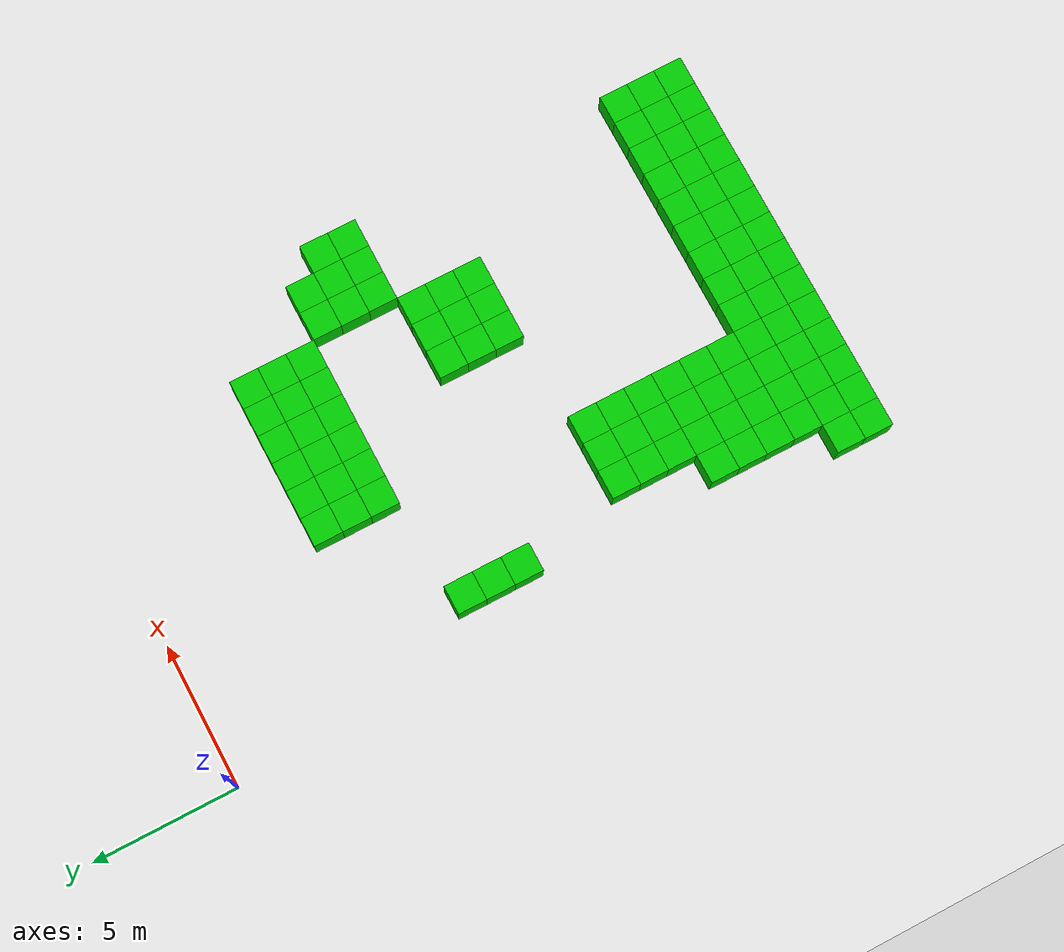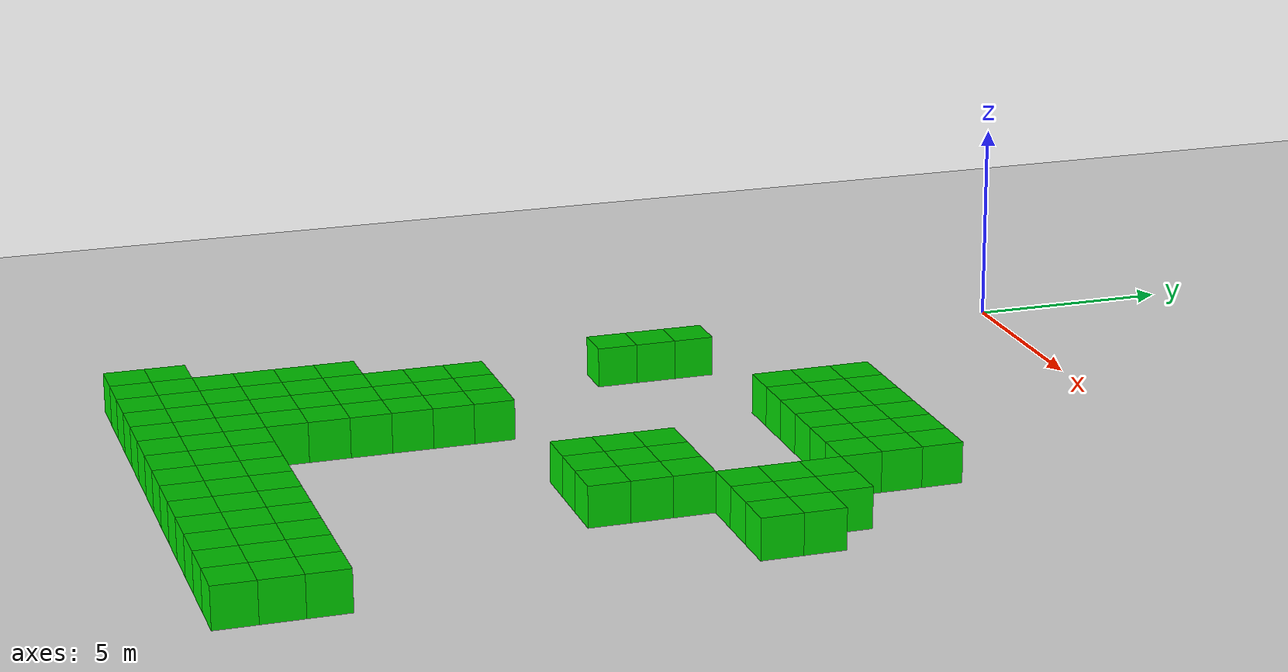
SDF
<sdf version="1.6">
 <world name="generated_maze">
  <model name="ground_plane">
   <static>true</static>
   <link name="link">
    <collision name="collision">
     <geometry><plane><normal>0 0 1</normal><size>100 100</size></plane></geometry>
    </collision>
    <visual name="visual">
     <geometry><plane><normal>0 0 1</normal><size>100 100</size></plane></geometry>
     <material>
      <ambient>0.9 0.9 0.9 1</ambient>
      <diffuse>0.9 0.9 0.9 1</diffuse>
      <specular>0.3 0.3 0.3 1</specular>
     </material>
    </visual>
   </link>
  </model>
  <model name="wall_30_30">
   <static>true</static>
   <pose>6 -6 0.5 0 0 0</pose>
   <link name="link">
    <collision name="collision"><geometry><box><size>1 1 1</size></box></geometry></collision>
    <visual name="visual">
     <geometry><box><size>1 1 1</size></box></geometry>
     <material>
      <ambient>0.0 0.8 0.0 1</ambient>
      <diffuse>0.0 0.8 0.0 1</diffuse>
      <specular>0.1 0.1 0.1 1</specular>
     </material>
    </visual>
   </link>
  </model>
  <model name="wall_30_31">
   <static>true</static>
   <pose>7 -6 0.5 0 0 0</pose>
   <link name="link">
    <collision name="collision"><geometry><box><size>1 1 1</size></box></geometry></collision>
    <visual name="visual">
     <geometry><box><size>1 1 1</size></box></geometry>
     <material>
      <ambient>0.0 0.8 0.0 1</ambient>
      <diffuse>0.0 0.8 0.0 1</diffuse>
      <specular>0.1 0.1 0.1 1</specular>
     </material>
    </visual>
   </link>
  </model>
  <model name="wall_30_32">
   <static>true</static>
   <pose>8 -6 0.5 0 0 0</pose>
   <link name="link">
    <collision name="collision"><geometry><box><size>1 1 1</size></box></geometry></collision>
    <visual name="visual">
     <geometry><box><size>1 1 1</size></box></geometry>
     <material>
      <ambient>0.0 0.8 0.0 1</ambient>
      <diffuse>0.0 0.8 0.0 1</diffuse>
      <specular>0.1 0.1 0.1 1</specular>
     </material>
    </visual>
   </link>
  </model>
  <model name="wall_30_33">
   <static>true</static>
   <pose>9 -6 0.5 0 0 0</pose>
   <link name="link">
    <collision name="collision"><geometry><box><size>1 1 1</size></box></geometry></collision>
    <visual name="visual">
     <geometry><box><size>1 1 1</size></box></geometry>
     <material>
      <ambient>0.0 0.8 0.0 1</ambient>
      <diffuse>0.0 0.8 0.0 1</diffuse>
      <specular>0.1 0.1 0.1 1</specular>
     </material>
    </visual>
   </link>
  </model>
  <model name="wall_30_34">
   <static>true</static>
   <pose>10 -6 0.5 0 0 0</pose>
   <link name="link">
    <collision name="collision"><geometry><box><size>1 1 1</size></box></geometry></collision>
    <visual name="visual">
     <geometry><box><size>1 1 1</size></box></geometry>
     <material>
      <ambient>0.0 0.8 0.0 1</ambient>
      <diffuse>0.0 0.8 0.0 1</diffuse>
      <specular>0.1 0.1 0.1 1</specular>
     </material>
    </visual>
   </link>
  </model>
  <model name="wall_30_35">
   <static>true</static>
   <pose>11 -6 0.5 0 0 0</pose>
   <link name="link">
    <collision name="collision"><geometry><box><size>1 1 1</size></box></geometry></collision>
    <visual name="visual">
     <geometry><box><size>1 1 1</size></box></geometry>
     <material>
      <ambient>0.0 0.8 0.0 1</ambient>
      <diffuse>0.0 0.8 0.0 1</diffuse>
      <specular>0.1 0.1 0.1 1</specular>
     </material>
    </visual>
   </link>
  </model>
  <model name="wall_31_30">
   <static>true</static>
   <pose>6 -7 0.5 0 0 0</pose>
   <link name="link">
    <collision name="collision"><geometry><box><size>1 1 1</size></box></geometry></collision>
    <visual name="visual">
     <geometry><box><size>1 1 1</size></box></geometry>
     <material>
      <ambient>0.0 0.8 0.0 1</ambient>
      <diffuse>0.0 0.8 0.0 1</diffuse>
      <specular>0.1 0.1 0.1 1</specular>
     </material>
    </visual>
   </link>
  </model>
  <model name="wall_31_31">
   <static>true</static>
   <pose>7 -7 0.5 0 0 0</pose>
   <link name="link">
    <collision name="collision"><geometry><box><size>1 1 1</size></box></geometry></collision>
    <visual name="visual">
     <geometry><box><size>1 1 1</size></box></geometry>
     <material>
      <ambient>0.0 0.8 0.0 1</ambient>
      <diffuse>0.0 0.8 0.0 1</diffuse>
      <specular>0.1 0.1 0.1 1</specular>
     </material>
    </visual>
   </link>
  </model>
  <model name="wall_31_32">
   <static>true</static>
   <pose>8 -7 0.5 0 0 0</pose>
   <link name="link">
    <collision name="collision"><geometry><box><size>1 1 1</size></box></geometry></collision>
    <visual name="visual">
     <geometry><box><size>1 1 1</size></box></geometry>
     <material>
      <ambient>0.0 0.8 0.0 1</ambient>
      <diffuse>0.0 0.8 0.0 1</diffuse>
      <specular>0.1 0.1 0.1 1</specular>
     </material>
    </visual>
   </link>
  </model>
  <model name="wall_31_33">
   <static>true</static>
   <pose>9 -7 0.5 0 0 0</pose>
   <link name="link">
    <collision name="collision"><geometry><box><size>1 1 1</size></box></geometry></collision>
    <visual name="visual">
     <geometry><box><size>1 1 1</size></box></geometry>
     <material>
      <ambient>0.0 0.8 0.0 1</ambient>
      <diffuse>0.0 0.8 0.0 1</diffuse>
      <specular>0.1 0.1 0.1 1</specular>
     </material>
    </visual>
   </link>
  </model>
  <model name="wall_31_34">
   <static>true</static>
   <pose>10 -7 0.5 0 0 0</pose>
   <link name="link">
    <collision name="collision"><geometry><box><size>1 1 1</size></box></geometry></collision>
    <visual name="visual">
     <geometry><box><size>1 1 1</size></box></geometry>
     <material>
      <ambient>0.0 0.8 0.0 1</ambient>
      <diffuse>0.0 0.8 0.0 1</diffuse>
      <specular>0.1 0.1 0.1 1</specular>
     </material>
    </visual>
   </link>
  </model>
  <model name="wall_31_35">
   <static>true</static>
   <pose>11 -7 0.5 0 0 0</pose>
   <link name="link">
    <collision name="collision"><geometry><box><size>1 1 1</size></box></geometry></collision>
    <visual name="visual">
     <geometry><box><size>1 1 1</size></box></geometry>
     <material>
      <ambient>0.0 0.8 0.0 1</ambient>
      <diffuse>0.0 0.8 0.0 1</diffuse>
      <specular>0.1 0.1 0.1 1</specular>
     </material>
    </visual>
   </link>
  </model>
  <model name="wall_32_30">
   <static>true</static>
   <pose>6 -8 0.5 0 0 0</pose>
   <link name="link">
    <collision name="collision"><geometry><box><size>1 1 1</size></box></geometry></collision>
    <visual name="visual">
     <geometry><box><size>1 1 1</size></box></geometry>
     <material>
      <ambient>0.0 0.8 0.0 1</ambient>
      <diffuse>0.0 0.8 0.0 1</diffuse>
      <specular>0.1 0.1 0.1 1</specular>
     </material>
    </visual>
   </link>
  </model>
  <model name="wall_32_31">
   <static>true</static>
   <pose>7 -8 0.5 0 0 0</pose>
   <link name="link">
    <collision name="collision"><geometry><box><size>1 1 1</size></box></geometry></collision>
    <visual name="visual">
     <geometry><box><size>1 1 1</size></box></geometry>
     <material>
      <ambient>0.0 0.8 0.0 1</ambient>
      <diffuse>0.0 0.8 0.0 1</diffuse>
      <specular>0.1 0.1 0.1 1</specular>
     </material>
    </visual>
   </link>
  </model>
  <model name="wall_32_32">
   <static>true</static>
   <pose>8 -8 0.5 0 0 0</pose>
   <link name="link">
    <collision name="collision"><geometry><box><size>1 1 1</size></box></geometry></collision>
    <visual name="visual">
     <geometry><box><size>1 1 1</size></box></geometry>
     <material>
      <ambient>0.0 0.8 0.0 1</ambient>
      <diffuse>0.0 0.8 0.0 1</diffuse>
      <specular>0.1 0.1 0.1 1</specular>
     </material>
    </visual>
   </link>
  </model>
  <model name="wall_32_33">
   <static>true</static>
   <pose>9 -8 0.5 0 0 0</pose>
   <link name="link">
    <collision name="collision"><geometry><box><size>1 1 1</size></box></geometry></collision>
    <visual name="visual">
     <geometry><box><size>1 1 1</size></box></geometry>
     <material>
      <ambient>0.0 0.8 0.0 1</ambient>
      <diffuse>0.0 0.8 0.0 1</diffuse>
      <specular>0.1 0.1 0.1 1</specular>
     </material>
    </visual>
   </link>
  </model>
  <model name="wall_32_34">
   <static>true</static>
   <pose>10 -8 0.5 0 0 0</pose>
   <link name="link">
    <collision name="collision"><geometry><box><size>1 1 1</size></box></geometry></collision>
    <visual name="visual">
     <geometry><box><size>1 1 1</size></box></geometry>
     <material>
      <ambient>0.0 0.8 0.0 1</ambient>
      <diffuse>0.0 0.8 0.0 1</diffuse>
      <specular>0.1 0.1 0.1 1</specular>
     </material>
    </visual>
   </link>
  </model>
  <model name="wall_32_35">
   <static>true</static>
   <pose>11 -8 0.5 0 0 0</pose>
   <link name="link">
    <collision name="collision"><geometry><box><size>1 1 1</size></box></geometry></collision>
    <visual name="visual">
     <geometry><box><size>1 1 1</size></box></geometry>
     <material>
      <ambient>0.0 0.8 0.0 1</ambient>
      <diffuse>0.0 0.8 0.0 1</diffuse>
      <specular>0.1 0.1 0.1 1</specular>
     </material>
    </visual>
   </link>
  </model>
  <model name="wall_33_26">
   <static>true</static>
   <pose>2 -9 0.5 0 0 0</pose>
   <link name="link">
    <collision name="collision"><geometry><box><size>1 1 1</size></box></geometry></collision>
    <visual name="visual">
     <geometry><box><size>1 1 1</size></box></geometry>
     <material>
      <ambient>0.0 0.8 0.0 1</ambient>
      <diffuse>0.0 0.8 0.0 1</diffuse>
      <specular>0.1 0.1 0.1 1</specular>
     </material>
    </visual>
   </link>
  </model>
  <model name="wall_33_36">
   <static>true</static>
   <pose>12 -9 0.5 0 0 0</pose>
   <link name="link">
    <collision name="collision"><geometry><box><size>1 1 1</size></box></geometry></collision>
    <visual name="visual">
     <geometry><box><size>1 1 1</size></box></geometry>
     <material>
      <ambient>0.0 0.8 0.0 1</ambient>
      <diffuse>0.0 0.8 0.0 1</diffuse>
      <specular>0.1 0.1 0.1 1</specular>
     </material>
    </visual>
   </link>
  </model>
  <model name="wall_33_37">
   <static>true</static>
   <pose>13 -9 0.5 0 0 0</pose>
   <link name="link">
    <collision name="collision"><geometry><box><size>1 1 1</size></box></geometry></collision>
    <visual name="visual">
     <geometry><box><size>1 1 1</size></box></geometry>
     <material>
      <ambient>0.0 0.8 0.0 1</ambient>
      <diffuse>0.0 0.8 0.0 1</diffuse>
      <specular>0.1 0.1 0.1 1</specular>
     </material>
    </visual>
   </link>
  </model>
  <model name="wall_34_26">
   <static>true</static>
   <pose>2 -10 0.5 0 0 0</pose>
   <link name="link">
    <collision name="collision"><geometry><box><size>1 1 1</size></box></geometry></collision>
    <visual name="visual">
     <geometry><box><size>1 1 1</size></box></geometry>
     <material>
      <ambient>0.0 0.8 0.0 1</ambient>
      <diffuse>0.0 0.8 0.0 1</diffuse>
      <specular>0.1 0.1 0.1 1</specular>
     </material>
    </visual>
   </link>
  </model>
  <model name="wall_34_36">
   <static>true</static>
   <pose>12 -10 0.5 0 0 0</pose>
   <link name="link">
    <collision name="collision"><geometry><box><size>1 1 1</size></box></geometry></collision>
    <visual name="visual">
     <geometry><box><size>1 1 1</size></box></geometry>
     <material>
      <ambient>0.0 0.8 0.0 1</ambient>
      <diffuse>0.0 0.8 0.0 1</diffuse>
      <specular>0.1 0.1 0.1 1</specular>
     </material>
    </visual>
   </link>
  </model>
  <model name="wall_34_37">
   <static>true</static>
   <pose>13 -10 0.5 0 0 0</pose>
   <link name="link">
    <collision name="collision"><geometry><box><size>1 1 1</size></box></geometry></collision>
    <visual name="visual">
     <geometry><box><size>1 1 1</size></box></geometry>
     <material>
      <ambient>0.0 0.8 0.0 1</ambient>
      <diffuse>0.0 0.8 0.0 1</diffuse>
      <specular>0.1 0.1 0.1 1</specular>
     </material>
    </visual>
   </link>
  </model>
  <model name="wall_34_38">
   <static>true</static>
   <pose>14 -10 0.5 0 0 0</pose>
   <link name="link">
    <collision name="collision"><geometry><box><size>1 1 1</size></box></geometry></collision>
    <visual name="visual">
     <geometry><box><size>1 1 1</size></box></geometry>
     <material>
      <ambient>0.0 0.8 0.0 1</ambient>
      <diffuse>0.0 0.8 0.0 1</diffuse>
      <specular>0.1 0.1 0.1 1</specular>
     </material>
    </visual>
   </link>
  </model>
  <model name="wall_35_26">
   <static>true</static>
   <pose>2 -11 0.5 0 0 0</pose>
   <link name="link">
    <collision name="collision"><geometry><box><size>1 1 1</size></box></geometry></collision>
    <visual name="visual">
     <geometry><box><size>1 1 1</size></box></geometry>
     <material>
      <ambient>0.0 0.8 0.0 1</ambient>
      <diffuse>0.0 0.8 0.0 1</diffuse>
      <specular>0.1 0.1 0.1 1</specular>
     </material>
    </visual>
   </link>
  </model>
  <model name="wall_35_36">
   <static>true</static>
   <pose>12 -11 0.5 0 0 0</pose>
   <link name="link">
    <collision name="collision"><geometry><box><size>1 1 1</size></box></geometry></collision>
    <visual name="visual">
     <geometry><box><size>1 1 1</size></box></geometry>
     <material>
      <ambient>0.0 0.8 0.0 1</ambient>
      <diffuse>0.0 0.8 0.0 1</diffuse>
      <specular>0.1 0.1 0.1 1</specular>
     </material>
    </visual>
   </link>
  </model>
  <model name="wall_35_37">
   <static>true</static>
   <pose>13 -11 0.5 0 0 0</pose>
   <link name="link">
    <collision name="collision"><geometry><box><size>1 1 1</size></box></geometry></collision>
    <visual name="visual">
     <geometry><box><size>1 1 1</size></box></geometry>
     <material>
      <ambient>0.0 0.8 0.0 1</ambient>
      <diffuse>0.0 0.8 0.0 1</diffuse>
      <specular>0.1 0.1 0.1 1</specular>
     </material>
    </visual>
   </link>
  </model>
  <model name="wall_35_38">
   <static>true</static>
   <pose>14 -11 0.5 0 0 0</pose>
   <link name="link">
    <collision name="collision"><geometry><box><size>1 1 1</size></box></geometry></collision>
    <visual name="visual">
     <geometry><box><size>1 1 1</size></box></geometry>
     <material>
      <ambient>0.0 0.8 0.0 1</ambient>
      <diffuse>0.0 0.8 0.0 1</diffuse>
      <specular>0.1 0.1 0.1 1</specular>
     </material>
    </visual>
   </link>
  </model>
  <model name="wall_36_33">
   <static>true</static>
   <pose>9 -12 0.5 0 0 0</pose>
   <link name="link">
    <collision name="collision"><geometry><box><size>1 1 1</size></box></geometry></collision>
    <visual name="visual">
     <geometry><box><size>1 1 1</size></box></geometry>
     <material>
      <ambient>0.0 0.8 0.0 1</ambient>
      <diffuse>0.0 0.8 0.0 1</diffuse>
      <specular>0.1 0.1 0.1 1</specular>
     </material>
    </visual>
   </link>
  </model>
  <model name="wall_36_34">
   <static>true</static>
   <pose>10 -12 0.5 0 0 0</pose>
   <link name="link">
    <collision name="collision"><geometry><box><size>1 1 1</size></box></geometry></collision>
    <visual name="visual">
     <geometry><box><size>1 1 1</size></box></geometry>
     <material>
      <ambient>0.0 0.8 0.0 1</ambient>
      <diffuse>0.0 0.8 0.0 1</diffuse>
      <specular>0.1 0.1 0.1 1</specular>
     </material>
    </visual>
   </link>
  </model>
  <model name="wall_36_35">
   <static>true</static>
   <pose>11 -12 0.5 0 0 0</pose>
   <link name="link">
    <collision name="collision"><geometry><box><size>1 1 1</size></box></geometry></collision>
    <visual name="visual">
     <geometry><box><size>1 1 1</size></box></geometry>
     <material>
      <ambient>0.0 0.8 0.0 1</ambient>
      <diffuse>0.0 0.8 0.0 1</diffuse>
      <specular>0.1 0.1 0.1 1</specular>
     </material>
    </visual>
   </link>
  </model>
  <model name="wall_37_33">
   <static>true</static>
   <pose>9 -13 0.5 0 0 0</pose>
   <link name="link">
    <collision name="collision"><geometry><box><size>1 1 1</size></box></geometry></collision>
    <visual name="visual">
     <geometry><box><size>1 1 1</size></box></geometry>
     <material>
      <ambient>0.0 0.8 0.0 1</ambient>
      <diffuse>0.0 0.8 0.0 1</diffuse>
      <specular>0.1 0.1 0.1 1</specular>
     </material>
    </visual>
   </link>
  </model>
  <model name="wall_37_34">
   <static>true</static>
   <pose>10 -13 0.5 0 0 0</pose>
   <link name="link">
    <collision name="collision"><geometry><box><size>1 1 1</size></box></geometry></collision>
    <visual name="visual">
     <geometry><box><size>1 1 1</size></box></geometry>
     <material>
      <ambient>0.0 0.8 0.0 1</ambient>
      <diffuse>0.0 0.8 0.0 1</diffuse>
      <specular>0.1 0.1 0.1 1</specular>
     </material>
    </visual>
   </link>
  </model>
  <model name="wall_37_35">
   <static>true</static>
   <pose>11 -13 0.5 0 0 0</pose>
   <link name="link">
    <collision name="collision"><geometry><box><size>1 1 1</size></box></geometry></collision>
    <visual name="visual">
     <geometry><box><size>1 1 1</size></box></geometry>
     <material>
      <ambient>0.0 0.8 0.0 1</ambient>
      <diffuse>0.0 0.8 0.0 1</diffuse>
      <specular>0.1 0.1 0.1 1</specular>
     </material>
    </visual>
   </link>
  </model>
  <model name="wall_38_33">
   <static>true</static>
   <pose>9 -14 0.5 0 0 0</pose>
   <link name="link">
    <collision name="collision"><geometry><box><size>1 1 1</size></box></geometry></collision>
    <visual name="visual">
     <geometry><box><size>1 1 1</size></box></geometry>
     <material>
      <ambient>0.0 0.8 0.0 1</ambient>
      <diffuse>0.0 0.8 0.0 1</diffuse>
      <specular>0.1 0.1 0.1 1</specular>
     </material>
    </visual>
   </link>
  </model>
  <model name="wall_38_34">
   <static>true</static>
   <pose>10 -14 0.5 0 0 0</pose>
   <link name="link">
    <collision name="collision"><geometry><box><size>1 1 1</size></box></geometry></collision>
    <visual name="visual">
     <geometry><box><size>1 1 1</size></box></geometry>
     <material>
      <ambient>0.0 0.8 0.0 1</ambient>
      <diffuse>0.0 0.8 0.0 1</diffuse>
      <specular>0.1 0.1 0.1 1</specular>
     </material>
    </visual>
   </link>
  </model>
  <model name="wall_38_35">
   <static>true</static>
   <pose>11 -14 0.5 0 0 0</pose>
   <link name="link">
    <collision name="collision"><geometry><box><size>1 1 1</size></box></geometry></collision>
    <visual name="visual">
     <geometry><box><size>1 1 1</size></box></geometry>
     <material>
      <ambient>0.0 0.8 0.0 1</ambient>
      <diffuse>0.0 0.8 0.0 1</diffuse>
      <specular>0.1 0.1 0.1 1</specular>
     </material>
    </visual>
   </link>
  </model>
  <model name="wall_39_27">
   <static>true</static>
   <pose>3 -15 0.5 0 0 0</pose>
   <link name="link">
    <collision name="collision"><geometry><box><size>1 1 1</size></box></geometry></collision>
    <visual name="visual">
     <geometry><box><size>1 1 1</size></box></geometry>
     <material>
      <ambient>0.0 0.8 0.0 1</ambient>
      <diffuse>0.0 0.8 0.0 1</diffuse>
      <specular>0.1 0.1 0.1 1</specular>
     </material>
    </visual>
   </link>
  </model>
  <model name="wall_39_28">
   <static>true</static>
   <pose>4 -15 0.5 0 0 0</pose>
   <link name="link">
    <collision name="collision"><geometry><box><size>1 1 1</size></box></geometry></collision>
    <visual name="visual">
     <geometry><box><size>1 1 1</size></box></geometry>
     <material>
      <ambient>0.0 0.8 0.0 1</ambient>
      <diffuse>0.0 0.8 0.0 1</diffuse>
      <specular>0.1 0.1 0.1 1</specular>
     </material>
    </visual>
   </link>
  </model>
  <model name="wall_39_29">
   <static>true</static>
   <pose>5 -15 0.5 0 0 0</pose>
   <link name="link">
    <collision name="collision"><geometry><box><size>1 1 1</size></box></geometry></collision>
    <visual name="visual">
     <geometry><box><size>1 1 1</size></box></geometry>
     <material>
      <ambient>0.0 0.8 0.0 1</ambient>
      <diffuse>0.0 0.8 0.0 1</diffuse>
      <specular>0.1 0.1 0.1 1</specular>
     </material>
    </visual>
   </link>
  </model>
  <model name="wall_40_27">
   <static>true</static>
   <pose>3 -16 0.5 0 0 0</pose>
   <link name="link">
    <collision name="collision"><geometry><box><size>1 1 1</size></box></geometry></collision>
    <visual name="visual">
     <geometry><box><size>1 1 1</size></box></geometry>
     <material>
      <ambient>0.0 0.8 0.0 1</ambient>
      <diffuse>0.0 0.8 0.0 1</diffuse>
      <specular>0.1 0.1 0.1 1</specular>
     </material>
    </visual>
   </link>
  </model>
  <model name="wall_40_28">
   <static>true</static>
   <pose>4 -16 0.5 0 0 0</pose>
   <link name="link">
    <collision name="collision"><geometry><box><size>1 1 1</size></box></geometry></collision>
    <visual name="visual">
     <geometry><box><size>1 1 1</size></box></geometry>
     <material>
      <ambient>0.0 0.8 0.0 1</ambient>
      <diffuse>0.0 0.8 0.0 1</diffuse>
      <specular>0.1 0.1 0.1 1</specular>
     </material>
    </visual>
   </link>
  </model>
  <model name="wall_40_29">
   <static>true</static>
   <pose>5 -16 0.5 0 0 0</pose>
   <link name="link">
    <collision name="collision"><geometry><box><size>1 1 1</size></box></geometry></collision>
    <visual name="visual">
     <geometry><box><size>1 1 1</size></box></geometry>
     <material>
      <ambient>0.0 0.8 0.0 1</ambient>
      <diffuse>0.0 0.8 0.0 1</diffuse>
      <specular>0.1 0.1 0.1 1</specular>
     </material>
    </visual>
   </link>
  </model>
  <model name="wall_41_27">
   <static>true</static>
   <pose>3 -17 0.5 0 0 0</pose>
   <link name="link">
    <collision name="collision"><geometry><box><size>1 1 1</size></box></geometry></collision>
    <visual name="visual">
     <geometry><box><size>1 1 1</size></box></geometry>
     <material>
      <ambient>0.0 0.8 0.0 1</ambient>
      <diffuse>0.0 0.8 0.0 1</diffuse>
      <specular>0.1 0.1 0.1 1</specular>
     </material>
    </visual>
   </link>
  </model>
  <model name="wall_41_28">
   <static>true</static>
   <pose>4 -17 0.5 0 0 0</pose>
   <link name="link">
    <collision name="collision"><geometry><box><size>1 1 1</size></box></geometry></collision>
    <visual name="visual">
     <geometry><box><size>1 1 1</size></box></geometry>
     <material>
      <ambient>0.0 0.8 0.0 1</ambient>
      <diffuse>0.0 0.8 0.0 1</diffuse>
      <specular>0.1 0.1 0.1 1</specular>
     </material>
    </visual>
   </link>
  </model>
  <model name="wall_41_29">
   <static>true</static>
   <pose>5 -17 0.5 0 0 0</pose>
   <link name="link">
    <collision name="collision"><geometry><box><size>1 1 1</size></box></geometry></collision>
    <visual name="visual">
     <geometry><box><size>1 1 1</size></box></geometry>
     <material>
      <ambient>0.0 0.8 0.0 1</ambient>
      <diffuse>0.0 0.8 0.0 1</diffuse>
      <specular>0.1 0.1 0.1 1</specular>
     </material>
    </visual>
   </link>
  </model>
  <model name="wall_42_26">
   <static>true</static>
   <pose>2 -18 0.5 0 0 0</pose>
   <link name="link">
    <collision name="collision"><geometry><box><size>1 1 1</size></box></geometry></collision>
    <visual name="visual">
     <geometry><box><size>1 1 1</size></box></geometry>
     <material>
      <ambient>0.0 0.8 0.0 1</ambient>
      <diffuse>0.0 0.8 0.0 1</diffuse>
      <specular>0.1 0.1 0.1 1</specular>
     </material>
    </visual>
   </link>
  </model>
  <model name="wall_42_27">
   <static>true</static>
   <pose>3 -18 0.5 0 0 0</pose>
   <link name="link">
    <collision name="collision"><geometry><box><size>1 1 1</size></box></geometry></collision>
    <visual name="visual">
     <geometry><box><size>1 1 1</size></box></geometry>
     <material>
      <ambient>0.0 0.8 0.0 1</ambient>
      <diffuse>0.0 0.8 0.0 1</diffuse>
      <specular>0.1 0.1 0.1 1</specular>
     </material>
    </visual>
   </link>
  </model>
  <model name="wall_42_28">
   <static>true</static>
   <pose>4 -18 0.5 0 0 0</pose>
   <link name="link">
    <collision name="collision"><geometry><box><size>1 1 1</size></box></geometry></collision>
    <visual name="visual">
     <geometry><box><size>1 1 1</size></box></geometry>
     <material>
      <ambient>0.0 0.8 0.0 1</ambient>
      <diffuse>0.0 0.8 0.0 1</diffuse>
      <specular>0.1 0.1 0.1 1</specular>
     </material>
    </visual>
   </link>
  </model>
  <model name="wall_42_29">
   <static>true</static>
   <pose>5 -18 0.5 0 0 0</pose>
   <link name="link">
    <collision name="collision"><geometry><box><size>1 1 1</size></box></geometry></collision>
    <visual name="visual">
     <geometry><box><size>1 1 1</size></box></geometry>
     <material>
      <ambient>0.0 0.8 0.0 1</ambient>
      <diffuse>0.0 0.8 0.0 1</diffuse>
      <specular>0.1 0.1 0.1 1</specular>
     </material>
    </visual>
   </link>
  </model>
  <model name="wall_43_26">
   <static>true</static>
   <pose>2 -19 0.5 0 0 0</pose>
   <link name="link">
    <collision name="collision"><geometry><box><size>1 1 1</size></box></geometry></collision>
    <visual name="visual">
     <geometry><box><size>1 1 1</size></box></geometry>
     <material>
      <ambient>0.0 0.8 0.0 1</ambient>
      <diffuse>0.0 0.8 0.0 1</diffuse>
      <specular>0.1 0.1 0.1 1</specular>
     </material>
    </visual>
   </link>
  </model>
  <model name="wall_43_27">
   <static>true</static>
   <pose>3 -19 0.5 0 0 0</pose>
   <link name="link">
    <collision name="collision"><geometry><box><size>1 1 1</size></box></geometry></collision>
    <visual name="visual">
     <geometry><box><size>1 1 1</size></box></geometry>
     <material>
      <ambient>0.0 0.8 0.0 1</ambient>
      <diffuse>0.0 0.8 0.0 1</diffuse>
      <specular>0.1 0.1 0.1 1</specular>
     </material>
    </visual>
   </link>
  </model>
  <model name="wall_43_28">
   <static>true</static>
   <pose>4 -19 0.5 0 0 0</pose>
   <link name="link">
    <collision name="collision"><geometry><box><size>1 1 1</size></box></geometry></collision>
    <visual name="visual">
     <geometry><box><size>1 1 1</size></box></geometry>
     <material>
      <ambient>0.0 0.8 0.0 1</ambient>
      <diffuse>0.0 0.8 0.0 1</diffuse>
      <specular>0.1 0.1 0.1 1</specular>
     </material>
    </visual>
   </link>
  </model>
  <model name="wall_43_29">
   <static>true</static>
   <pose>5 -19 0.5 0 0 0</pose>
   <link name="link">
    <collision name="collision"><geometry><box><size>1 1 1</size></box></geometry></collision>
    <visual name="visual">
     <geometry><box><size>1 1 1</size></box></geometry>
     <material>
      <ambient>0.0 0.8 0.0 1</ambient>
      <diffuse>0.0 0.8 0.0 1</diffuse>
      <specular>0.1 0.1 0.1 1</specular>
     </material>
    </visual>
   </link>
  </model>
  <model name="wall_44_26">
   <static>true</static>
   <pose>2 -20 0.5 0 0 0</pose>
   <link name="link">
    <collision name="collision"><geometry><box><size>1 1 1</size></box></geometry></collision>
    <visual name="visual">
     <geometry><box><size>1 1 1</size></box></geometry>
     <material>
      <ambient>0.0 0.8 0.0 1</ambient>
      <diffuse>0.0 0.8 0.0 1</diffuse>
      <specular>0.1 0.1 0.1 1</specular>
     </material>
    </visual>
   </link>
  </model>
  <model name="wall_44_27">
   <static>true</static>
   <pose>3 -20 0.5 0 0 0</pose>
   <link name="link">
    <collision name="collision"><geometry><box><size>1 1 1</size></box></geometry></collision>
    <visual name="visual">
     <geometry><box><size>1 1 1</size></box></geometry>
     <material>
      <ambient>0.0 0.8 0.0 1</ambient>
      <diffuse>0.0 0.8 0.0 1</diffuse>
      <specular>0.1 0.1 0.1 1</specular>
     </material>
    </visual>
   </link>
  </model>
  <model name="wall_44_28">
   <static>true</static>
   <pose>4 -20 0.5 0 0 0</pose>
   <link name="link">
    <collision name="collision"><geometry><box><size>1 1 1</size></box></geometry></collision>
    <visual name="visual">
     <geometry><box><size>1 1 1</size></box></geometry>
     <material>
      <ambient>0.0 0.8 0.0 1</ambient>
      <diffuse>0.0 0.8 0.0 1</diffuse>
      <specular>0.1 0.1 0.1 1</specular>
     </material>
    </visual>
   </link>
  </model>
  <model name="wall_44_29">
   <static>true</static>
   <pose>5 -20 0.5 0 0 0</pose>
   <link name="link">
    <collision name="collision"><geometry><box><size>1 1 1</size></box></geometry></collision>
    <visual name="visual">
     <geometry><box><size>1 1 1</size></box></geometry>
     <material>
      <ambient>0.0 0.8 0.0 1</ambient>
      <diffuse>0.0 0.8 0.0 1</diffuse>
      <specular>0.1 0.1 0.1 1</specular>
     </material>
    </visual>
   </link>
  </model>
  <model name="wall_45_26">
   <static>true</static>
   <pose>2 -21 0.5 0 0 0</pose>
   <link name="link">
    <collision name="collision"><geometry><box><size>1 1 1</size></box></geometry></collision>
    <visual name="visual">
     <geometry><box><size>1 1 1</size></box></geometry>
     <material>
      <ambient>0.0 0.8 0.0 1</ambient>
      <diffuse>0.0 0.8 0.0 1</diffuse>
      <specular>0.1 0.1 0.1 1</specular>
     </material>
    </visual>
   </link>
  </model>
  <model name="wall_45_27">
   <static>true</static>
   <pose>3 -21 0.5 0 0 0</pose>
   <link name="link">
    <collision name="collision"><geometry><box><size>1 1 1</size></box></geometry></collision>
    <visual name="visual">
     <geometry><box><size>1 1 1</size></box></geometry>
     <material>
      <ambient>0.0 0.8 0.0 1</ambient>
      <diffuse>0.0 0.8 0.0 1</diffuse>
      <specular>0.1 0.1 0.1 1</specular>
     </material>
    </visual>
   </link>
  </model>
  <model name="wall_45_28">
   <static>true</static>
   <pose>4 -21 0.5 0 0 0</pose>
   <link name="link">
    <collision name="collision"><geometry><box><size>1 1 1</size></box></geometry></collision>
    <visual name="visual">
     <geometry><box><size>1 1 1</size></box></geometry>
     <material>
      <ambient>0.0 0.8 0.0 1</ambient>
      <diffuse>0.0 0.8 0.0 1</diffuse>
      <specular>0.1 0.1 0.1 1</specular>
     </material>
    </visual>
   </link>
  </model>
  <model name="wall_45_29">
   <static>true</static>
   <pose>5 -21 0.5 0 0 0</pose>
   <link name="link">
    <collision name="collision"><geometry><box><size>1 1 1</size></box></geometry></collision>
    <visual name="visual">
     <geometry><box><size>1 1 1</size></box></geometry>
     <material>
      <ambient>0.0 0.8 0.0 1</ambient>
      <diffuse>0.0 0.8 0.0 1</diffuse>
      <specular>0.1 0.1 0.1 1</specular>
     </material>
    </visual>
   </link>
  </model>
  <model name="wall_45_30">
   <static>true</static>
   <pose>6 -21 0.5 0 0 0</pose>
   <link name="link">
    <collision name="collision"><geometry><box><size>1 1 1</size></box></geometry></collision>
    <visual name="visual">
     <geometry><box><size>1 1 1</size></box></geometry>
     <material>
      <ambient>0.0 0.8 0.0 1</ambient>
      <diffuse>0.0 0.8 0.0 1</diffuse>
      <specular>0.1 0.1 0.1 1</specular>
     </material>
    </visual>
   </link>
  </model>
  <model name="wall_45_31">
   <static>true</static>
   <pose>7 -21 0.5 0 0 0</pose>
   <link name="link">
    <collision name="collision"><geometry><box><size>1 1 1</size></box></geometry></collision>
    <visual name="visual">
     <geometry><box><size>1 1 1</size></box></geometry>
     <material>
      <ambient>0.0 0.8 0.0 1</ambient>
      <diffuse>0.0 0.8 0.0 1</diffuse>
      <specular>0.1 0.1 0.1 1</specular>
     </material>
    </visual>
   </link>
  </model>
  <model name="wall_45_32">
   <static>true</static>
   <pose>8 -21 0.5 0 0 0</pose>
   <link name="link">
    <collision name="collision"><geometry><box><size>1 1 1</size></box></geometry></collision>
    <visual name="visual">
     <geometry><box><size>1 1 1</size></box></geometry>
     <material>
      <ambient>0.0 0.8 0.0 1</ambient>
      <diffuse>0.0 0.8 0.0 1</diffuse>
      <specular>0.1 0.1 0.1 1</specular>
     </material>
    </visual>
   </link>
  </model>
  <model name="wall_45_33">
   <static>true</static>
   <pose>9 -21 0.5 0 0 0</pose>
   <link name="link">
    <collision name="collision"><geometry><box><size>1 1 1</size></box></geometry></collision>
    <visual name="visual">
     <geometry><box><size>1 1 1</size></box></geometry>
     <material>
      <ambient>0.0 0.8 0.0 1</ambient>
      <diffuse>0.0 0.8 0.0 1</diffuse>
      <specular>0.1 0.1 0.1 1</specular>
     </material>
    </visual>
   </link>
  </model>
  <model name="wall_45_34">
   <static>true</static>
   <pose>10 -21 0.5 0 0 0</pose>
   <link name="link">
    <collision name="collision"><geometry><box><size>1 1 1</size></box></geometry></collision>
    <visual name="visual">
     <geometry><box><size>1 1 1</size></box></geometry>
     <material>
      <ambient>0.0 0.8 0.0 1</ambient>
      <diffuse>0.0 0.8 0.0 1</diffuse>
      <specular>0.1 0.1 0.1 1</specular>
     </material>
    </visual>
   </link>
  </model>
  <model name="wall_45_35">
   <static>true</static>
   <pose>11 -21 0.5 0 0 0</pose>
   <link name="link">
    <collision name="collision"><geometry><box><size>1 1 1</size></box></geometry></collision>
    <visual name="visual">
     <geometry><box><size>1 1 1</size></box></geometry>
     <material>
      <ambient>0.0 0.8 0.0 1</ambient>
      <diffuse>0.0 0.8 0.0 1</diffuse>
      <specular>0.1 0.1 0.1 1</specular>
     </material>
    </visual>
   </link>
  </model>
  <model name="wall_45_36">
   <static>true</static>
   <pose>12 -21 0.5 0 0 0</pose>
   <link name="link">
    <collision name="collision"><geometry><box><size>1 1 1</size></box></geometry></collision>
    <visual name="visual">
     <geometry><box><size>1 1 1</size></box></geometry>
     <material>
      <ambient>0.0 0.8 0.0 1</ambient>
      <diffuse>0.0 0.8 0.0 1</diffuse>
      <specular>0.1 0.1 0.1 1</specular>
     </material>
    </visual>
   </link>
  </model>
  <model name="wall_45_37">
   <static>true</static>
   <pose>13 -21 0.5 0 0 0</pose>
   <link name="link">
    <collision name="collision"><geometry><box><size>1 1 1</size></box></geometry></collision>
    <visual name="visual">
     <geometry><box><size>1 1 1</size></box></geometry>
     <material>
      <ambient>0.0 0.8 0.0 1</ambient>
      <diffuse>0.0 0.8 0.0 1</diffuse>
      <specular>0.1 0.1 0.1 1</specular>
     </material>
    </visual>
   </link>
  </model>
  <model name="wall_45_38">
   <static>true</static>
   <pose>14 -21 0.5 0 0 0</pose>
   <link name="link">
    <collision name="collision"><geometry><box><size>1 1 1</size></box></geometry></collision>
    <visual name="visual">
     <geometry><box><size>1 1 1</size></box></geometry>
     <material>
      <ambient>0.0 0.8 0.0 1</ambient>
      <diffuse>0.0 0.8 0.0 1</diffuse>
      <specular>0.1 0.1 0.1 1</specular>
     </material>
    </visual>
   </link>
  </model>
  <model name="wall_46_25">
   <static>true</static>
   <pose>1 -22 0.5 0 0 0</pose>
   <link name="link">
    <collision name="collision"><geometry><box><size>1 1 1</size></box></geometry></collision>
    <visual name="visual">
     <geometry><box><size>1 1 1</size></box></geometry>
     <material>
      <ambient>0.0 0.8 0.0 1</ambient>
      <diffuse>0.0 0.8 0.0 1</diffuse>
      <specular>0.1 0.1 0.1 1</specular>
     </material>
    </visual>
   </link>
  </model>
  <model name="wall_46_26">
   <static>true</static>
   <pose>2 -22 0.5 0 0 0</pose>
   <link name="link">
    <collision name="collision"><geometry><box><size>1 1 1</size></box></geometry></collision>
    <visual name="visual">
     <geometry><box><size>1 1 1</size></box></geometry>
     <material>
      <ambient>0.0 0.8 0.0 1</ambient>
      <diffuse>0.0 0.8 0.0 1</diffuse>
      <specular>0.1 0.1 0.1 1</specular>
     </material>
    </visual>
   </link>
  </model>
  <model name="wall_46_27">
   <static>true</static>
   <pose>3 -22 0.5 0 0 0</pose>
   <link name="link">
    <collision name="collision"><geometry><box><size>1 1 1</size></box></geometry></collision>
    <visual name="visual">
     <geometry><box><size>1 1 1</size></box></geometry>
     <material>
      <ambient>0.0 0.8 0.0 1</ambient>
      <diffuse>0.0 0.8 0.0 1</diffuse>
      <specular>0.1 0.1 0.1 1</specular>
     </material>
    </visual>
   </link>
  </model>
  <model name="wall_46_28">
   <static>true</static>
   <pose>4 -22 0.5 0 0 0</pose>
   <link name="link">
    <collision name="collision"><geometry><box><size>1 1 1</size></box></geometry></collision>
    <visual name="visual">
     <geometry><box><size>1 1 1</size></box></geometry>
     <material>
      <ambient>0.0 0.8 0.0 1</ambient>
      <diffuse>0.0 0.8 0.0 1</diffuse>
      <specular>0.1 0.1 0.1 1</specular>
     </material>
    </visual>
   </link>
  </model>
  <model name="wall_46_29">
   <static>true</static>
   <pose>5 -22 0.5 0 0 0</pose>
   <link name="link">
    <collision name="collision"><geometry><box><size>1 1 1</size></box></geometry></collision>
    <visual name="visual">
     <geometry><box><size>1 1 1</size></box></geometry>
     <material>
      <ambient>0.0 0.8 0.0 1</ambient>
      <diffuse>0.0 0.8 0.0 1</diffuse>
      <specular>0.1 0.1 0.1 1</specular>
     </material>
    </visual>
   </link>
  </model>
  <model name="wall_46_30">
   <static>true</static>
   <pose>6 -22 0.5 0 0 0</pose>
   <link name="link">
    <collision name="collision"><geometry><box><size>1 1 1</size></box></geometry></collision>
    <visual name="visual">
     <geometry><box><size>1 1 1</size></box></geometry>
     <material>
      <ambient>0.0 0.8 0.0 1</ambient>
      <diffuse>0.0 0.8 0.0 1</diffuse>
      <specular>0.1 0.1 0.1 1</specular>
     </material>
    </visual>
   </link>
  </model>
  <model name="wall_46_31">
   <static>true</static>
   <pose>7 -22 0.5 0 0 0</pose>
   <link name="link">
    <collision name="collision"><geometry><box><size>1 1 1</size></box></geometry></collision>
    <visual name="visual">
     <geometry><box><size>1 1 1</size></box></geometry>
     <material>
      <ambient>0.0 0.8 0.0 1</ambient>
      <diffuse>0.0 0.8 0.0 1</diffuse>
      <specular>0.1 0.1 0.1 1</specular>
     </material>
    </visual>
   </link>
  </model>
  <model name="wall_46_32">
   <static>true</static>
   <pose>8 -22 0.5 0 0 0</pose>
   <link name="link">
    <collision name="collision"><geometry><box><size>1 1 1</size></box></geometry></collision>
    <visual name="visual">
     <geometry><box><size>1 1 1</size></box></geometry>
     <material>
      <ambient>0.0 0.8 0.0 1</ambient>
      <diffuse>0.0 0.8 0.0 1</diffuse>
      <specular>0.1 0.1 0.1 1</specular>
     </material>
    </visual>
   </link>
  </model>
  <model name="wall_46_33">
   <static>true</static>
   <pose>9 -22 0.5 0 0 0</pose>
   <link name="link">
    <collision name="collision"><geometry><box><size>1 1 1</size></box></geometry></collision>
    <visual name="visual">
     <geometry><box><size>1 1 1</size></box></geometry>
     <material>
      <ambient>0.0 0.8 0.0 1</ambient>
      <diffuse>0.0 0.8 0.0 1</diffuse>
      <specular>0.1 0.1 0.1 1</specular>
     </material>
    </visual>
   </link>
  </model>
  <model name="wall_46_34">
   <static>true</static>
   <pose>10 -22 0.5 0 0 0</pose>
   <link name="link">
    <collision name="collision"><geometry><box><size>1 1 1</size></box></geometry></collision>
    <visual name="visual">
     <geometry><box><size>1 1 1</size></box></geometry>
     <material>
      <ambient>0.0 0.8 0.0 1</ambient>
      <diffuse>0.0 0.8 0.0 1</diffuse>
      <specular>0.1 0.1 0.1 1</specular>
     </material>
    </visual>
   </link>
  </model>
  <model name="wall_46_35">
   <static>true</static>
   <pose>11 -22 0.5 0 0 0</pose>
   <link name="link">
    <collision name="collision"><geometry><box><size>1 1 1</size></box></geometry></collision>
    <visual name="visual">
     <geometry><box><size>1 1 1</size></box></geometry>
     <material>
      <ambient>0.0 0.8 0.0 1</ambient>
      <diffuse>0.0 0.8 0.0 1</diffuse>
      <specular>0.1 0.1 0.1 1</specular>
     </material>
    </visual>
   </link>
  </model>
  <model name="wall_46_36">
   <static>true</static>
   <pose>12 -22 0.5 0 0 0</pose>
   <link name="link">
    <collision name="collision"><geometry><box><size>1 1 1</size></box></geometry></collision>
    <visual name="visual">
     <geometry><box><size>1 1 1</size></box></geometry>
     <material>
      <ambient>0.0 0.8 0.0 1</ambient>
      <diffuse>0.0 0.8 0.0 1</diffuse>
      <specular>0.1 0.1 0.1 1</specular>
     </material>
    </visual>
   </link>
  </model>
  <model name="wall_46_37">
   <static>true</static>
   <pose>13 -22 0.5 0 0 0</pose>
   <link name="link">
    <collision name="collision"><geometry><box><size>1 1 1</size></box></geometry></collision>
    <visual name="visual">
     <geometry><box><size>1 1 1</size></box></geometry>
     <material>
      <ambient>0.0 0.8 0.0 1</ambient>
      <diffuse>0.0 0.8 0.0 1</diffuse>
      <specular>0.1 0.1 0.1 1</specular>
     </material>
    </visual>
   </link>
  </model>
  <model name="wall_46_38">
   <static>true</static>
   <pose>14 -22 0.5 0 0 0</pose>
   <link name="link">
    <collision name="collision"><geometry><box><size>1 1 1</size></box></geometry></collision>
    <visual name="visual">
     <geometry><box><size>1 1 1</size></box></geometry>
     <material>
      <ambient>0.0 0.8 0.0 1</ambient>
      <diffuse>0.0 0.8 0.0 1</diffuse>
      <specular>0.1 0.1 0.1 1</specular>
     </material>
    </visual>
   </link>
  </model>
  <model name="wall_47_25">
   <static>true</static>
   <pose>1 -23 0.5 0 0 0</pose>
   <link name="link">
    <collision name="collision"><geometry><box><size>1 1 1</size></box></geometry></collision>
    <visual name="visual">
     <geometry><box><size>1 1 1</size></box></geometry>
     <material>
      <ambient>0.0 0.8 0.0 1</ambient>
      <diffuse>0.0 0.8 0.0 1</diffuse>
      <specular>0.1 0.1 0.1 1</specular>
     </material>
    </visual>
   </link>
  </model>
  <model name="wall_47_26">
   <static>true</static>
   <pose>2 -23 0.5 0 0 0</pose>
   <link name="link">
    <collision name="collision"><geometry><box><size>1 1 1</size></box></geometry></collision>
    <visual name="visual">
     <geometry><box><size>1 1 1</size></box></geometry>
     <material>
      <ambient>0.0 0.8 0.0 1</ambient>
      <diffuse>0.0 0.8 0.0 1</diffuse>
      <specular>0.1 0.1 0.1 1</specular>
     </material>
    </visual>
   </link>
  </model>
  <model name="wall_47_27">
   <static>true</static>
   <pose>3 -23 0.5 0 0 0</pose>
   <link name="link">
    <collision name="collision"><geometry><box><size>1 1 1</size></box></geometry></collision>
    <visual name="visual">
     <geometry><box><size>1 1 1</size></box></geometry>
     <material>
      <ambient>0.0 0.8 0.0 1</ambient>
      <diffuse>0.0 0.8 0.0 1</diffuse>
      <specular>0.1 0.1 0.1 1</specular>
     </material>
    </visual>
   </link>
  </model>
  <model name="wall_47_28">
   <static>true</static>
   <pose>4 -23 0.5 0 0 0</pose>
   <link name="link">
    <collision name="collision"><geometry><box><size>1 1 1</size></box></geometry></collision>
    <visual name="visual">
     <geometry><box><size>1 1 1</size></box></geometry>
     <material>
      <ambient>0.0 0.8 0.0 1</ambient>
      <diffuse>0.0 0.8 0.0 1</diffuse>
      <specular>0.1 0.1 0.1 1</specular>
     </material>
    </visual>
   </link>
  </model>
  <model name="wall_47_29">
   <static>true</static>
   <pose>5 -23 0.5 0 0 0</pose>
   <link name="link">
    <collision name="collision"><geometry><box><size>1 1 1</size></box></geometry></collision>
    <visual name="visual">
     <geometry><box><size>1 1 1</size></box></geometry>
     <material>
      <ambient>0.0 0.8 0.0 1</ambient>
      <diffuse>0.0 0.8 0.0 1</diffuse>
      <specular>0.1 0.1 0.1 1</specular>
     </material>
    </visual>
   </link>
  </model>
  <model name="wall_47_30">
   <static>true</static>
   <pose>6 -23 0.5 0 0 0</pose>
   <link name="link">
    <collision name="collision"><geometry><box><size>1 1 1</size></box></geometry></collision>
    <visual name="visual">
     <geometry><box><size>1 1 1</size></box></geometry>
     <material>
      <ambient>0.0 0.8 0.0 1</ambient>
      <diffuse>0.0 0.8 0.0 1</diffuse>
      <specular>0.1 0.1 0.1 1</specular>
     </material>
    </visual>
   </link>
  </model>
  <model name="wall_47_31">
   <static>true</static>
   <pose>7 -23 0.5 0 0 0</pose>
   <link name="link">
    <collision name="collision"><geometry><box><size>1 1 1</size></box></geometry></collision>
    <visual name="visual">
     <geometry><box><size>1 1 1</size></box></geometry>
     <material>
      <ambient>0.0 0.8 0.0 1</ambient>
      <diffuse>0.0 0.8 0.0 1</diffuse>
      <specular>0.1 0.1 0.1 1</specular>
     </material>
    </visual>
   </link>
  </model>
  <model name="wall_47_32">
   <static>true</static>
   <pose>8 -23 0.5 0 0 0</pose>
   <link name="link">
    <collision name="collision"><geometry><box><size>1 1 1</size></box></geometry></collision>
    <visual name="visual">
     <geometry><box><size>1 1 1</size></box></geometry>
     <material>
      <ambient>0.0 0.8 0.0 1</ambient>
      <diffuse>0.0 0.8 0.0 1</diffuse>
      <specular>0.1 0.1 0.1 1</specular>
     </material>
    </visual>
   </link>
  </model>
  <model name="wall_47_33">
   <static>true</static>
   <pose>9 -23 0.5 0 0 0</pose>
   <link name="link">
    <collision name="collision"><geometry><box><size>1 1 1</size></box></geometry></collision>
    <visual name="visual">
     <geometry><box><size>1 1 1</size></box></geometry>
     <material>
      <ambient>0.0 0.8 0.0 1</ambient>
      <diffuse>0.0 0.8 0.0 1</diffuse>
      <specular>0.1 0.1 0.1 1</specular>
     </material>
    </visual>
   </link>
  </model>
  <model name="wall_47_34">
   <static>true</static>
   <pose>10 -23 0.5 0 0 0</pose>
   <link name="link">
    <collision name="collision"><geometry><box><size>1 1 1</size></box></geometry></collision>
    <visual name="visual">
     <geometry><box><size>1 1 1</size></box></geometry>
     <material>
      <ambient>0.0 0.8 0.0 1</ambient>
      <diffuse>0.0 0.8 0.0 1</diffuse>
      <specular>0.1 0.1 0.1 1</specular>
     </material>
    </visual>
   </link>
  </model>
  <model name="wall_47_35">
   <static>true</static>
   <pose>11 -23 0.5 0 0 0</pose>
   <link name="link">
    <collision name="collision"><geometry><box><size>1 1 1</size></box></geometry></collision>
    <visual name="visual">
     <geometry><box><size>1 1 1</size></box></geometry>
     <material>
      <ambient>0.0 0.8 0.0 1</ambient>
      <diffuse>0.0 0.8 0.0 1</diffuse>
      <specular>0.1 0.1 0.1 1</specular>
     </material>
    </visual>
   </link>
  </model>
  <model name="wall_47_36">
   <static>true</static>
   <pose>12 -23 0.5 0 0 0</pose>
   <link name="link">
    <collision name="collision"><geometry><box><size>1 1 1</size></box></geometry></collision>
    <visual name="visual">
     <geometry><box><size>1 1 1</size></box></geometry>
     <material>
      <ambient>0.0 0.8 0.0 1</ambient>
      <diffuse>0.0 0.8 0.0 1</diffuse>
      <specular>0.1 0.1 0.1 1</specular>
     </material>
    </visual>
   </link>
  </model>
  <model name="wall_47_37">
   <static>true</static>
   <pose>13 -23 0.5 0 0 0</pose>
   <link name="link">
    <collision name="collision"><geometry><box><size>1 1 1</size></box></geometry></collision>
    <visual name="visual">
     <geometry><box><size>1 1 1</size></box></geometry>
     <material>
      <ambient>0.0 0.8 0.0 1</ambient>
      <diffuse>0.0 0.8 0.0 1</diffuse>
      <specular>0.1 0.1 0.1 1</specular>
     </material>
    </visual>
   </link>
  </model>
  <model name="wall_47_38">
   <static>true</static>
   <pose>14 -23 0.5 0 0 0</pose>
   <link name="link">
    <collision name="collision"><geometry><box><size>1 1 1</size></box></geometry></collision>
    <visual name="visual">
     <geometry><box><size>1 1 1</size></box></geometry>
     <material>
      <ambient>0.0 0.8 0.0 1</ambient>
      <diffuse>0.0 0.8 0.0 1</diffuse>
      <specular>0.1 0.1 0.1 1</specular>
     </material>
    </visual>
   </link>
  </model>
 </world>
</sdf>
